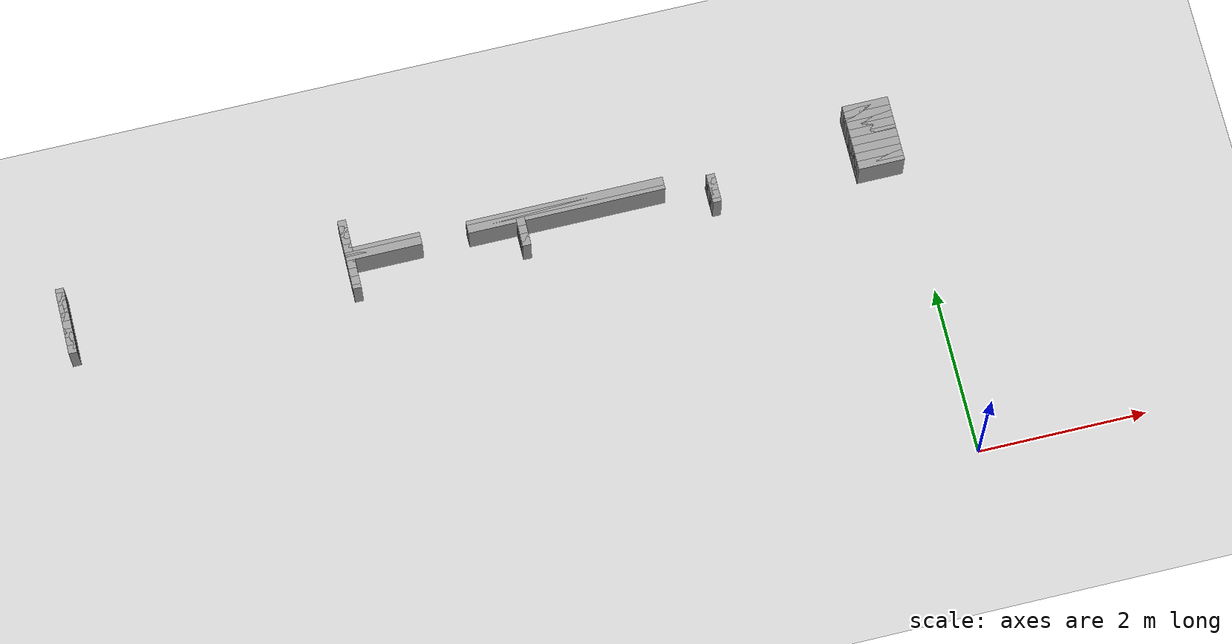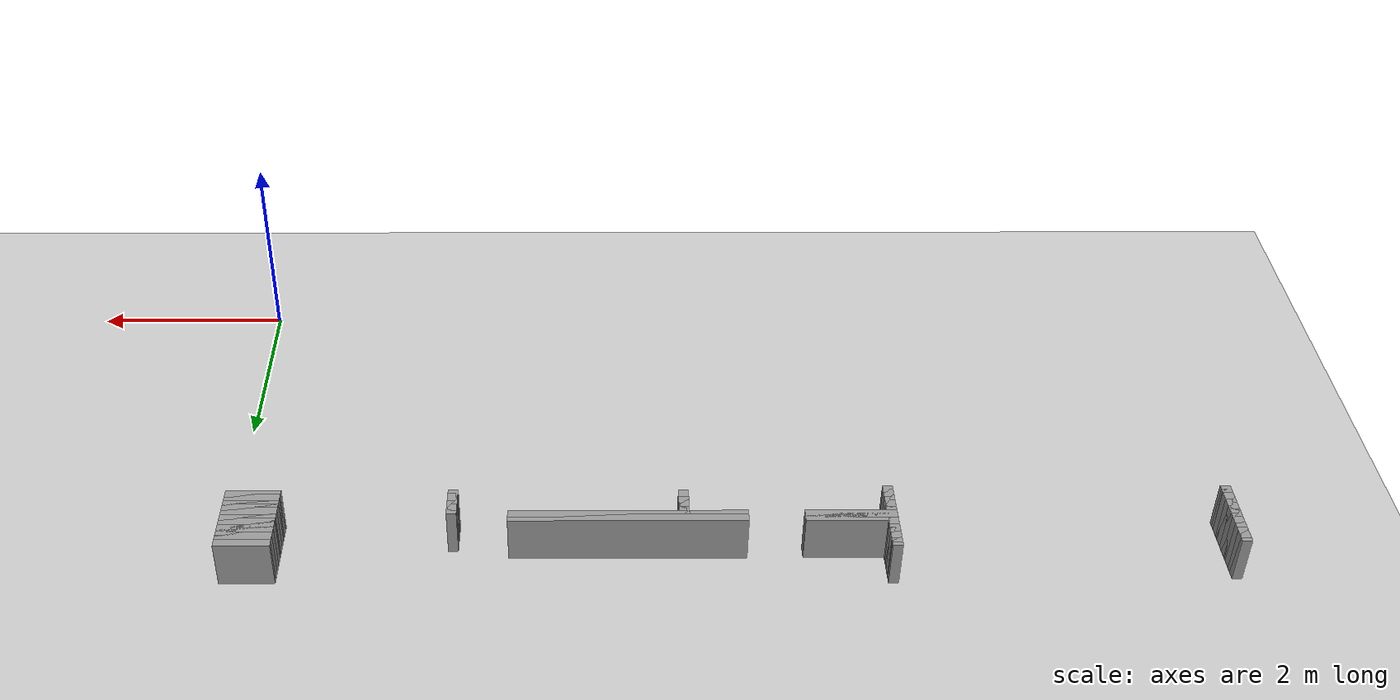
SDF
<sdf version="1.6">
 <world name="GridMap">
  <include><uri>model://sun</uri></include>
  <include><uri>model://ground_plane</uri></include>
  <model name="GridMap">
   <link name="Wall_(131.0,70.0)">
    <collision name="Wall_(131.0,70.0)_Collision">
     <geometry><box><size>0.1 0.1 0.5</size></box></geometry>
     <pose>-6.550000000000001 3.5 0.25 0 -0 0</pose>
    </collision>
    <inertial>
     <mass>0.5</mass>
     <pose>0 0.01 0 0 0 0</pose>
     <inertia><ixx>0.004</ixx><ixy>0.001</ixy><ixz>0</ixz><iyy>0.006</iyy><iyz>0</iyz><izz>0.007</izz></inertia>
    </inertial>
    <visual name="Wall_(131.0,70.0)_Visual">
     <geometry><box><size>0.1 0.1 0.5</size></box></geometry>
     <pose>-6.550000000000001 3.5 0.25 0 -0 0</pose>
     <material>
      <script><uri>file://media/materials/scripts/gazebo.material</uri><name>Gazebo/Grey</name></script>
      <ambient>1 1 1 1</ambient>
     </material>
     <meta><layer>0</layer></meta>
    </visual>
   </link>
   <link name="Wall_(198.0,70.0)">
    <collision name="Wall_(198.0,70.0)_Collision">
     <geometry><box><size>0.1 0.1 0.5</size></box></geometry>
     <pose>-9.9 3.5 0.25 0 -0 0</pose>
    </collision>
    <inertial>
     <mass>0.5</mass>
     <pose>0 0.01 0 0 0 0</pose>
     <inertia><ixx>0.004</ixx><ixy>0.001</ixy><ixz>0</ixz><iyy>0.006</iyy><iyz>0</iyz><izz>0.007</izz></inertia>
    </inertial>
    <visual name="Wall_(198.0,70.0)_Visual">
     <geometry><box><size>0.1 0.1 0.5</size></box></geometry>
     <pose>-9.9 3.5 0.25 0 -0 0</pose>
     <material>
      <script><uri>file://media/materials/scripts/gazebo.material</uri><name>Gazebo/Grey</name></script>
      <ambient>1 1 1 1</ambient>
     </material>
     <meta><layer>0</layer></meta>
    </visual>
   </link>
   <link name="Wall_(5.5,71.0)">
    <collision name="Wall_(5.5,71.0)_Collision">
     <geometry><box><size>0.55 0.1 0.5</size></box></geometry>
     <pose>-0.275 3.5500000000000003 0.25 0 -0 0</pose>
    </collision>
    <inertial>
     <mass>0.5</mass>
     <pose>0 0.01 0 0 0 0</pose>
     <inertia><ixx>0.004</ixx><ixy>0.001</ixy><ixz>0</ixz><iyy>0.006</iyy><iyz>0</iyz><izz>0.007</izz></inertia>
    </inertial>
    <visual name="Wall_(5.5,71.0)_Visual">
     <geometry><box><size>0.55 0.1 0.5</size></box></geometry>
     <pose>-0.275 3.5500000000000003 0.25 0 -0 0</pose>
     <material>
      <script><uri>file://media/materials/scripts/gazebo.material</uri><name>Gazebo/Grey</name></script>
      <ambient>1 1 1 1</ambient>
     </material>
     <meta><layer>0</layer></meta>
    </visual>
   </link>
   <link name="Wall_(45.0,71.0)">
    <collision name="Wall_(45.0,71.0)_Collision">
     <geometry><box><size>0.1 0.1 0.5</size></box></geometry>
     <pose>-2.25 3.5500000000000003 0.25 0 -0 0</pose>
    </collision>
    <inertial>
     <mass>0.5</mass>
     <pose>0 0.01 0 0 0 0</pose>
     <inertia><ixx>0.004</ixx><ixy>0.001</ixy><ixz>0</ixz><iyy>0.006</iyy><iyz>0</iyz><izz>0.007</izz></inertia>
    </inertial>
    <visual name="Wall_(45.0,71.0)_Visual">
     <geometry><box><size>0.1 0.1 0.5</size></box></geometry>
     <pose>-2.25 3.5500000000000003 0.25 0 -0 0</pose>
     <material>
      <script><uri>file://media/materials/scripts/gazebo.material</uri><name>Gazebo/Grey</name></script>
      <ambient>1 1 1 1</ambient>
     </material>
     <meta><layer>0</layer></meta>
    </visual>
   </link>
   <link name="Wall_(90.5,71.0)">
    <collision name="Wall_(90.5,71.0)_Collision">
     <geometry><box><size>0.1 0.1 0.5</size></box></geometry>
     <pose>-4.525 3.5500000000000003 0.25 0 -0 0</pose>
    </collision>
    <inertial>
     <mass>0.5</mass>
     <pose>0 0.01 0 0 0 0</pose>
     <inertia><ixx>0.004</ixx><ixy>0.001</ixy><ixz>0</ixz><iyy>0.006</iyy><iyz>0</iyz><izz>0.007</izz></inertia>
    </inertial>
    <visual name="Wall_(90.5,71.0)_Visual">
     <geometry><box><size>0.1 0.1 0.5</size></box></geometry>
     <pose>-4.525 3.5500000000000003 0.25 0 -0 0</pose>
     <material>
      <script><uri>file://media/materials/scripts/gazebo.material</uri><name>Gazebo/Grey</name></script>
      <ambient>1 1 1 1</ambient>
     </material>
     <meta><layer>0</layer></meta>
    </visual>
   </link>
   <link name="Wall_(131.0,71.0)">
    <collision name="Wall_(131.0,71.0)_Collision">
     <geometry><box><size>0.1 0.1 0.5</size></box></geometry>
     <pose>-6.550000000000001 3.5500000000000003 0.25 0 -0 0</pose>
    </collision>
    <inertial>
     <mass>0.5</mass>
     <pose>0 0.01 0 0 0 0</pose>
     <inertia><ixx>0.004</ixx><ixy>0.001</ixy><ixz>0</ixz><iyy>0.006</iyy><iyz>0</iyz><izz>0.007</izz></inertia>
    </inertial>
    <visual name="Wall_(131.0,71.0)_Visual">
     <geometry><box><size>0.1 0.1 0.5</size></box></geometry>
     <pose>-6.550000000000001 3.5500000000000003 0.25 0 -0 0</pose>
     <material>
      <script><uri>file://media/materials/scripts/gazebo.material</uri><name>Gazebo/Grey</name></script>
      <ambient>1 1 1 1</ambient>
     </material>
     <meta><layer>0</layer></meta>
    </visual>
   </link>
   <link name="Wall_(198.0,71.0)">
    <collision name="Wall_(198.0,71.0)_Collision">
     <geometry><box><size>0.1 0.1 0.5</size></box></geometry>
     <pose>-9.9 3.5500000000000003 0.25 0 -0 0</pose>
    </collision>
    <inertial>
     <mass>0.5</mass>
     <pose>0 0.01 0 0 0 0</pose>
     <inertia><ixx>0.004</ixx><ixy>0.001</ixy><ixz>0</ixz><iyy>0.006</iyy><iyz>0</iyz><izz>0.007</izz></inertia>
    </inertial>
    <visual name="Wall_(198.0,71.0)_Visual">
     <geometry><box><size>0.1 0.1 0.5</size></box></geometry>
     <pose>-9.9 3.5500000000000003 0.25 0 -0 0</pose>
     <material>
      <script><uri>file://media/materials/scripts/gazebo.material</uri><name>Gazebo/Grey</name></script>
      <ambient>1 1 1 1</ambient>
     </material>
     <meta><layer>0</layer></meta>
    </visual>
   </link>
   <link name="Wall_(5.5,72.0)">
    <collision name="Wall_(5.5,72.0)_Collision">
     <geometry><box><size>0.55 0.1 0.5</size></box></geometry>
     <pose>-0.275 3.6 0.25 0 -0 0</pose>
    </collision>
    <inertial>
     <mass>0.5</mass>
     <pose>0 0.01 0 0 0 0</pose>
     <inertia><ixx>0.004</ixx><ixy>0.001</ixy><ixz>0</ixz><iyy>0.006</iyy><iyz>0</iyz><izz>0.007</izz></inertia>
    </inertial>
    <visual name="Wall_(5.5,72.0)_Visual">
     <geometry><box><size>0.55 0.1 0.5</size></box></geometry>
     <pose>-0.275 3.6 0.25 0 -0 0</pose>
     <material>
      <script><uri>file://media/materials/scripts/gazebo.material</uri><name>Gazebo/Grey</name></script>
      <ambient>1 1 1 1</ambient>
     </material>
     <meta><layer>0</layer></meta>
    </visual>
   </link>
   <link name="Wall_(45.0,72.0)">
    <collision name="Wall_(45.0,72.0)_Collision">
     <geometry><box><size>0.1 0.1 0.5</size></box></geometry>
     <pose>-2.25 3.6 0.25 0 -0 0</pose>
    </collision>
    <inertial>
     <mass>0.5</mass>
     <pose>0 0.01 0 0 0 0</pose>
     <inertia><ixx>0.004</ixx><ixy>0.001</ixy><ixz>0</ixz><iyy>0.006</iyy><iyz>0</iyz><izz>0.007</izz></inertia>
    </inertial>
    <visual name="Wall_(45.0,72.0)_Visual">
     <geometry><box><size>0.1 0.1 0.5</size></box></geometry>
     <pose>-2.25 3.6 0.25 0 -0 0</pose>
     <material>
      <script><uri>file://media/materials/scripts/gazebo.material</uri><name>Gazebo/Grey</name></script>
      <ambient>1 1 1 1</ambient>
     </material>
     <meta><layer>0</layer></meta>
    </visual>
   </link>
   <link name="Wall_(90.5,72.0)">
    <collision name="Wall_(90.5,72.0)_Collision">
     <geometry><box><size>0.1 0.1 0.5</size></box></geometry>
     <pose>-4.525 3.6 0.25 0 -0 0</pose>
    </collision>
    <inertial>
     <mass>0.5</mass>
     <pose>0 0.01 0 0 0 0</pose>
     <inertia><ixx>0.004</ixx><ixy>0.001</ixy><ixz>0</ixz><iyy>0.006</iyy><iyz>0</iyz><izz>0.007</izz></inertia>
    </inertial>
    <visual name="Wall_(90.5,72.0)_Visual">
     <geometry><box><size>0.1 0.1 0.5</size></box></geometry>
     <pose>-4.525 3.6 0.25 0 -0 0</pose>
     <material>
      <script><uri>file://media/materials/scripts/gazebo.material</uri><name>Gazebo/Grey</name></script>
      <ambient>1 1 1 1</ambient>
     </material>
     <meta><layer>0</layer></meta>
    </visual>
   </link>
   <link name="Wall_(131.0,72.0)">
    <collision name="Wall_(131.0,72.0)_Collision">
     <geometry><box><size>0.1 0.1 0.5</size></box></geometry>
     <pose>-6.550000000000001 3.6 0.25 0 -0 0</pose>
    </collision>
    <inertial>
     <mass>0.5</mass>
     <pose>0 0.01 0 0 0 0</pose>
     <inertia><ixx>0.004</ixx><ixy>0.001</ixy><ixz>0</ixz><iyy>0.006</iyy><iyz>0</iyz><izz>0.007</izz></inertia>
    </inertial>
    <visual name="Wall_(131.0,72.0)_Visual">
     <geometry><box><size>0.1 0.1 0.5</size></box></geometry>
     <pose>-6.550000000000001 3.6 0.25 0 -0 0</pose>
     <material>
      <script><uri>file://media/materials/scripts/gazebo.material</uri><name>Gazebo/Grey</name></script>
      <ambient>1 1 1 1</ambient>
     </material>
     <meta><layer>0</layer></meta>
    </visual>
   </link>
   <link name="Wall_(198.0,72.0)">
    <collision name="Wall_(198.0,72.0)_Collision">
     <geometry><box><size>0.1 0.1 0.5</size></box></geometry>
     <pose>-9.9 3.6 0.25 0 -0 0</pose>
    </collision>
    <inertial>
     <mass>0.5</mass>
     <pose>0 0.01 0 0 0 0</pose>
     <inertia><ixx>0.004</ixx><ixy>0.001</ixy><ixz>0</ixz><iyy>0.006</iyy><iyz>0</iyz><izz>0.007</izz></inertia>
    </inertial>
    <visual name="Wall_(198.0,72.0)_Visual">
     <geometry><box><size>0.1 0.1 0.5</size></box></geometry>
     <pose>-9.9 3.6 0.25 0 -0 0</pose>
     <material>
      <script><uri>file://media/materials/scripts/gazebo.material</uri><name>Gazebo/Grey</name></script>
      <ambient>1 1 1 1</ambient>
     </material>
     <meta><layer>0</layer></meta>
    </visual>
   </link>
   <link name="Wall_(5.5,73.0)">
    <collision name="Wall_(5.5,73.0)_Collision">
     <geometry><box><size>0.55 0.1 0.5</size></box></geometry>
     <pose>-0.275 3.6500000000000004 0.25 0 -0 0</pose>
    </collision>
    <inertial>
     <mass>0.5</mass>
     <pose>0 0.01 0 0 0 0</pose>
     <inertia><ixx>0.004</ixx><ixy>0.001</ixy><ixz>0</ixz><iyy>0.006</iyy><iyz>0</iyz><izz>0.007</izz></inertia>
    </inertial>
    <visual name="Wall_(5.5,73.0)_Visual">
     <geometry><box><size>0.55 0.1 0.5</size></box></geometry>
     <pose>-0.275 3.6500000000000004 0.25 0 -0 0</pose>
     <material>
      <script><uri>file://media/materials/scripts/gazebo.material</uri><name>Gazebo/Grey</name></script>
      <ambient>1 1 1 1</ambient>
     </material>
     <meta><layer>0</layer></meta>
    </visual>
   </link>
   <link name="Wall_(45.0,73.0)">
    <collision name="Wall_(45.0,73.0)_Collision">
     <geometry><box><size>0.1 0.1 0.5</size></box></geometry>
     <pose>-2.25 3.6500000000000004 0.25 0 -0 0</pose>
    </collision>
    <inertial>
     <mass>0.5</mass>
     <pose>0 0.01 0 0 0 0</pose>
     <inertia><ixx>0.004</ixx><ixy>0.001</ixy><ixz>0</ixz><iyy>0.006</iyy><iyz>0</iyz><izz>0.007</izz></inertia>
    </inertial>
    <visual name="Wall_(45.0,73.0)_Visual">
     <geometry><box><size>0.1 0.1 0.5</size></box></geometry>
     <pose>-2.25 3.6500000000000004 0.25 0 -0 0</pose>
     <material>
      <script><uri>file://media/materials/scripts/gazebo.material</uri><name>Gazebo/Grey</name></script>
      <ambient>1 1 1 1</ambient>
     </material>
     <meta><layer>0</layer></meta>
    </visual>
   </link>
   <link name="Wall_(90.5,73.0)">
    <collision name="Wall_(90.5,73.0)_Collision">
     <geometry><box><size>0.1 0.1 0.5</size></box></geometry>
     <pose>-4.525 3.6500000000000004 0.25 0 -0 0</pose>
    </collision>
    <inertial>
     <mass>0.5</mass>
     <pose>0 0.01 0 0 0 0</pose>
     <inertia><ixx>0.004</ixx><ixy>0.001</ixy><ixz>0</ixz><iyy>0.006</iyy><iyz>0</iyz><izz>0.007</izz></inertia>
    </inertial>
    <visual name="Wall_(90.5,73.0)_Visual">
     <geometry><box><size>0.1 0.1 0.5</size></box></geometry>
     <pose>-4.525 3.6500000000000004 0.25 0 -0 0</pose>
     <material>
      <script><uri>file://media/materials/scripts/gazebo.material</uri><name>Gazebo/Grey</name></script>
      <ambient>1 1 1 1</ambient>
     </material>
     <meta><layer>0</layer></meta>
    </visual>
   </link>
   <link name="Wall_(131.0,73.0)">
    <collision name="Wall_(131.0,73.0)_Collision">
     <geometry><box><size>0.1 0.1 0.5</size></box></geometry>
     <pose>-6.550000000000001 3.6500000000000004 0.25 0 -0 0</pose>
    </collision>
    <inertial>
     <mass>0.5</mass>
     <pose>0 0.01 0 0 0 0</pose>
     <inertia><ixx>0.004</ixx><ixy>0.001</ixy><ixz>0</ixz><iyy>0.006</iyy><iyz>0</iyz><izz>0.007</izz></inertia>
    </inertial>
    <visual name="Wall_(131.0,73.0)_Visual">
     <geometry><box><size>0.1 0.1 0.5</size></box></geometry>
     <pose>-6.550000000000001 3.6500000000000004 0.25 0 -0 0</pose>
     <material>
      <script><uri>file://media/materials/scripts/gazebo.material</uri><name>Gazebo/Grey</name></script>
      <ambient>1 1 1 1</ambient>
     </material>
     <meta><layer>0</layer></meta>
    </visual>
   </link>
   <link name="Wall_(198.0,73.0)">
    <collision name="Wall_(198.0,73.0)_Collision">
     <geometry><box><size>0.1 0.1 0.5</size></box></geometry>
     <pose>-9.9 3.6500000000000004 0.25 0 -0 0</pose>
    </collision>
    <inertial>
     <mass>0.5</mass>
     <pose>0 0.01 0 0 0 0</pose>
     <inertia><ixx>0.004</ixx><ixy>0.001</ixy><ixz>0</ixz><iyy>0.006</iyy><iyz>0</iyz><izz>0.007</izz></inertia>
    </inertial>
    <visual name="Wall_(198.0,73.0)_Visual">
     <geometry><box><size>0.1 0.1 0.5</size></box></geometry>
     <pose>-9.9 3.6500000000000004 0.25 0 -0 0</pose>
     <material>
      <script><uri>file://media/materials/scripts/gazebo.material</uri><name>Gazebo/Grey</name></script>
      <ambient>1 1 1 1</ambient>
     </material>
     <meta><layer>0</layer></meta>
    </visual>
   </link>
   <link name="Wall_(5.5,74.0)">
    <collision name="Wall_(5.5,74.0)_Collision">
     <geometry><box><size>0.55 0.1 0.5</size></box></geometry>
     <pose>-0.275 3.7 0.25 0 -0 0</pose>
    </collision>
    <inertial>
     <mass>0.5</mass>
     <pose>0 0.01 0 0 0 0</pose>
     <inertia><ixx>0.004</ixx><ixy>0.001</ixy><ixz>0</ixz><iyy>0.006</iyy><iyz>0</iyz><izz>0.007</izz></inertia>
    </inertial>
    <visual name="Wall_(5.5,74.0)_Visual">
     <geometry><box><size>0.55 0.1 0.5</size></box></geometry>
     <pose>-0.275 3.7 0.25 0 -0 0</pose>
     <material>
      <script><uri>file://media/materials/scripts/gazebo.material</uri><name>Gazebo/Grey</name></script>
      <ambient>1 1 1 1</ambient>
     </material>
     <meta><layer>0</layer></meta>
    </visual>
   </link>
   <link name="Wall_(45.0,74.0)">
    <collision name="Wall_(45.0,74.0)_Collision">
     <geometry><box><size>0.1 0.1 0.5</size></box></geometry>
     <pose>-2.25 3.7 0.25 0 -0 0</pose>
    </collision>
    <inertial>
     <mass>0.5</mass>
     <pose>0 0.01 0 0 0 0</pose>
     <inertia><ixx>0.004</ixx><ixy>0.001</ixy><ixz>0</ixz><iyy>0.006</iyy><iyz>0</iyz><izz>0.007</izz></inertia>
    </inertial>
    <visual name="Wall_(45.0,74.0)_Visual">
     <geometry><box><size>0.1 0.1 0.5</size></box></geometry>
     <pose>-2.25 3.7 0.25 0 -0 0</pose>
     <material>
      <script><uri>file://media/materials/scripts/gazebo.material</uri><name>Gazebo/Grey</name></script>
      <ambient>1 1 1 1</ambient>
     </material>
     <meta><layer>0</layer></meta>
    </visual>
   </link>
   <link name="Wall_(90.5,74.0)">
    <collision name="Wall_(90.5,74.0)_Collision">
     <geometry><box><size>0.1 0.1 0.5</size></box></geometry>
     <pose>-4.525 3.7 0.25 0 -0 0</pose>
    </collision>
    <inertial>
     <mass>0.5</mass>
     <pose>0 0.01 0 0 0 0</pose>
     <inertia><ixx>0.004</ixx><ixy>0.001</ixy><ixz>0</ixz><iyy>0.006</iyy><iyz>0</iyz><izz>0.007</izz></inertia>
    </inertial>
    <visual name="Wall_(90.5,74.0)_Visual">
     <geometry><box><size>0.1 0.1 0.5</size></box></geometry>
     <pose>-4.525 3.7 0.25 0 -0 0</pose>
     <material>
      <script><uri>file://media/materials/scripts/gazebo.material</uri><name>Gazebo/Grey</name></script>
      <ambient>1 1 1 1</ambient>
     </material>
     <meta><layer>0</layer></meta>
    </visual>
   </link>
   <link name="Wall_(131.0,74.0)">
    <collision name="Wall_(131.0,74.0)_Collision">
     <geometry><box><size>0.1 0.1 0.5</size></box></geometry>
     <pose>-6.550000000000001 3.7 0.25 0 -0 0</pose>
    </collision>
    <inertial>
     <mass>0.5</mass>
     <pose>0 0.01 0 0 0 0</pose>
     <inertia><ixx>0.004</ixx><ixy>0.001</ixy><ixz>0</ixz><iyy>0.006</iyy><iyz>0</iyz><izz>0.007</izz></inertia>
    </inertial>
    <visual name="Wall_(131.0,74.0)_Visual">
     <geometry><box><size>0.1 0.1 0.5</size></box></geometry>
     <pose>-6.550000000000001 3.7 0.25 0 -0 0</pose>
     <material>
      <script><uri>file://media/materials/scripts/gazebo.material</uri><name>Gazebo/Grey</name></script>
      <ambient>1 1 1 1</ambient>
     </material>
     <meta><layer>0</layer></meta>
    </visual>
   </link>
   <link name="Wall_(198.0,74.0)">
    <collision name="Wall_(198.0,74.0)_Collision">
     <geometry><box><size>0.1 0.1 0.5</size></box></geometry>
     <pose>-9.9 3.7 0.25 0 -0 0</pose>
    </collision>
    <inertial>
     <mass>0.5</mass>
     <pose>0 0.01 0 0 0 0</pose>
     <inertia><ixx>0.004</ixx><ixy>0.001</ixy><ixz>0</ixz><iyy>0.006</iyy><iyz>0</iyz><izz>0.007</izz></inertia>
    </inertial>
    <visual name="Wall_(198.0,74.0)_Visual">
     <geometry><box><size>0.1 0.1 0.5</size></box></geometry>
     <pose>-9.9 3.7 0.25 0 -0 0</pose>
     <material>
      <script><uri>file://media/materials/scripts/gazebo.material</uri><name>Gazebo/Grey</name></script>
      <ambient>1 1 1 1</ambient>
     </material>
     <meta><layer>0</layer></meta>
    </visual>
   </link>
   <link name="Wall_(5.5,75.0)">
    <collision name="Wall_(5.5,75.0)_Collision">
     <geometry><box><size>0.55 0.1 0.5</size></box></geometry>
     <pose>-0.275 3.75 0.25 0 -0 0</pose>
    </collision>
    <inertial>
     <mass>0.5</mass>
     <pose>0 0.01 0 0 0 0</pose>
     <inertia><ixx>0.004</ixx><ixy>0.001</ixy><ixz>0</ixz><iyy>0.006</iyy><iyz>0</iyz><izz>0.007</izz></inertia>
    </inertial>
    <visual name="Wall_(5.5,75.0)_Visual">
     <geometry><box><size>0.55 0.1 0.5</size></box></geometry>
     <pose>-0.275 3.75 0.25 0 -0 0</pose>
     <material>
      <script><uri>file://media/materials/scripts/gazebo.material</uri><name>Gazebo/Grey</name></script>
      <ambient>1 1 1 1</ambient>
     </material>
     <meta><layer>0</layer></meta>
    </visual>
   </link>
   <link name="Wall_(45.0,75.0)">
    <collision name="Wall_(45.0,75.0)_Collision">
     <geometry><box><size>0.1 0.1 0.5</size></box></geometry>
     <pose>-2.25 3.75 0.25 0 -0 0</pose>
    </collision>
    <inertial>
     <mass>0.5</mass>
     <pose>0 0.01 0 0 0 0</pose>
     <inertia><ixx>0.004</ixx><ixy>0.001</ixy><ixz>0</ixz><iyy>0.006</iyy><iyz>0</iyz><izz>0.007</izz></inertia>
    </inertial>
    <visual name="Wall_(45.0,75.0)_Visual">
     <geometry><box><size>0.1 0.1 0.5</size></box></geometry>
     <pose>-2.25 3.75 0.25 0 -0 0</pose>
     <material>
      <script><uri>file://media/materials/scripts/gazebo.material</uri><name>Gazebo/Grey</name></script>
      <ambient>1 1 1 1</ambient>
     </material>
     <meta><layer>0</layer></meta>
    </visual>
   </link>
   <link name="Wall_(90.5,75.0)">
    <collision name="Wall_(90.5,75.0)_Collision">
     <geometry><box><size>0.1 0.1 0.5</size></box></geometry>
     <pose>-4.525 3.75 0.25 0 -0 0</pose>
    </collision>
    <inertial>
     <mass>0.5</mass>
     <pose>0 0.01 0 0 0 0</pose>
     <inertia><ixx>0.004</ixx><ixy>0.001</ixy><ixz>0</ixz><iyy>0.006</iyy><iyz>0</iyz><izz>0.007</izz></inertia>
    </inertial>
    <visual name="Wall_(90.5,75.0)_Visual">
     <geometry><box><size>0.1 0.1 0.5</size></box></geometry>
     <pose>-4.525 3.75 0.25 0 -0 0</pose>
     <material>
      <script><uri>file://media/materials/scripts/gazebo.material</uri><name>Gazebo/Grey</name></script>
      <ambient>1 1 1 1</ambient>
     </material>
     <meta><layer>0</layer></meta>
    </visual>
   </link>
   <link name="Wall_(131.0,75.0)">
    <collision name="Wall_(131.0,75.0)_Collision">
     <geometry><box><size>0.1 0.1 0.5</size></box></geometry>
     <pose>-6.550000000000001 3.75 0.25 0 -0 0</pose>
    </collision>
    <inertial>
     <mass>0.5</mass>
     <pose>0 0.01 0 0 0 0</pose>
     <inertia><ixx>0.004</ixx><ixy>0.001</ixy><ixz>0</ixz><iyy>0.006</iyy><iyz>0</iyz><izz>0.007</izz></inertia>
    </inertial>
    <visual name="Wall_(131.0,75.0)_Visual">
     <geometry><box><size>0.1 0.1 0.5</size></box></geometry>
     <pose>-6.550000000000001 3.75 0.25 0 -0 0</pose>
     <material>
      <script><uri>file://media/materials/scripts/gazebo.material</uri><name>Gazebo/Grey</name></script>
      <ambient>1 1 1 1</ambient>
     </material>
     <meta><layer>0</layer></meta>
    </visual>
   </link>
   <link name="Wall_(198.0,75.0)">
    <collision name="Wall_(198.0,75.0)_Collision">
     <geometry><box><size>0.1 0.1 0.5</size></box></geometry>
     <pose>-9.9 3.75 0.25 0 -0 0</pose>
    </collision>
    <inertial>
     <mass>0.5</mass>
     <pose>0 0.01 0 0 0 0</pose>
     <inertia><ixx>0.004</ixx><ixy>0.001</ixy><ixz>0</ixz><iyy>0.006</iyy><iyz>0</iyz><izz>0.007</izz></inertia>
    </inertial>
    <visual name="Wall_(198.0,75.0)_Visual">
     <geometry><box><size>0.1 0.1 0.5</size></box></geometry>
     <pose>-9.9 3.75 0.25 0 -0 0</pose>
     <material>
      <script><uri>file://media/materials/scripts/gazebo.material</uri><name>Gazebo/Grey</name></script>
      <ambient>1 1 1 1</ambient>
     </material>
     <meta><layer>0</layer></meta>
    </visual>
   </link>
   <link name="Wall_(5.5,76.0)">
    <collision name="Wall_(5.5,76.0)_Collision">
     <geometry><box><size>0.55 0.1 0.5</size></box></geometry>
     <pose>-0.275 3.8000000000000003 0.25 0 -0 0</pose>
    </collision>
    <inertial>
     <mass>0.5</mass>
     <pose>0 0.01 0 0 0 0</pose>
     <inertia><ixx>0.004</ixx><ixy>0.001</ixy><ixz>0</ixz><iyy>0.006</iyy><iyz>0</iyz><izz>0.007</izz></inertia>
    </inertial>
    <visual name="Wall_(5.5,76.0)_Visual">
     <geometry><box><size>0.55 0.1 0.5</size></box></geometry>
     <pose>-0.275 3.8000000000000003 0.25 0 -0 0</pose>
     <material>
      <script><uri>file://media/materials/scripts/gazebo.material</uri><name>Gazebo/Grey</name></script>
      <ambient>1 1 1 1</ambient>
     </material>
     <meta><layer>0</layer></meta>
    </visual>
   </link>
   <link name="Wall_(45.0,76.0)">
    <collision name="Wall_(45.0,76.0)_Collision">
     <geometry><box><size>0.1 0.1 0.5</size></box></geometry>
     <pose>-2.25 3.8000000000000003 0.25 0 -0 0</pose>
    </collision>
    <inertial>
     <mass>0.5</mass>
     <pose>0 0.01 0 0 0 0</pose>
     <inertia><ixx>0.004</ixx><ixy>0.001</ixy><ixz>0</ixz><iyy>0.006</iyy><iyz>0</iyz><izz>0.007</izz></inertia>
    </inertial>
    <visual name="Wall_(45.0,76.0)_Visual">
     <geometry><box><size>0.1 0.1 0.5</size></box></geometry>
     <pose>-2.25 3.8000000000000003 0.25 0 -0 0</pose>
     <material>
      <script><uri>file://media/materials/scripts/gazebo.material</uri><name>Gazebo/Grey</name></script>
      <ambient>1 1 1 1</ambient>
     </material>
     <meta><layer>0</layer></meta>
    </visual>
   </link>
   <link name="Wall_(90.5,76.0)">
    <collision name="Wall_(90.5,76.0)_Collision">
     <geometry><box><size>0.1 0.1 0.5</size></box></geometry>
     <pose>-4.525 3.8000000000000003 0.25 0 -0 0</pose>
    </collision>
    <inertial>
     <mass>0.5</mass>
     <pose>0 0.01 0 0 0 0</pose>
     <inertia><ixx>0.004</ixx><ixy>0.001</ixy><ixz>0</ixz><iyy>0.006</iyy><iyz>0</iyz><izz>0.007</izz></inertia>
    </inertial>
    <visual name="Wall_(90.5,76.0)_Visual">
     <geometry><box><size>0.1 0.1 0.5</size></box></geometry>
     <pose>-4.525 3.8000000000000003 0.25 0 -0 0</pose>
     <material>
      <script><uri>file://media/materials/scripts/gazebo.material</uri><name>Gazebo/Grey</name></script>
      <ambient>1 1 1 1</ambient>
     </material>
     <meta><layer>0</layer></meta>
    </visual>
   </link>
   <link name="Wall_(131.0,76.0)">
    <collision name="Wall_(131.0,76.0)_Collision">
     <geometry><box><size>0.1 0.1 0.5</size></box></geometry>
     <pose>-6.550000000000001 3.8000000000000003 0.25 0 -0 0</pose>
    </collision>
    <inertial>
     <mass>0.5</mass>
     <pose>0 0.01 0 0 0 0</pose>
     <inertia><ixx>0.004</ixx><ixy>0.001</ixy><ixz>0</ixz><iyy>0.006</iyy><iyz>0</iyz><izz>0.007</izz></inertia>
    </inertial>
    <visual name="Wall_(131.0,76.0)_Visual">
     <geometry><box><size>0.1 0.1 0.5</size></box></geometry>
     <pose>-6.550000000000001 3.8000000000000003 0.25 0 -0 0</pose>
     <material>
      <script><uri>file://media/materials/scripts/gazebo.material</uri><name>Gazebo/Grey</name></script>
      <ambient>1 1 1 1</ambient>
     </material>
     <meta><layer>0</layer></meta>
    </visual>
   </link>
   <link name="Wall_(198.0,76.0)">
    <collision name="Wall_(198.0,76.0)_Collision">
     <geometry><box><size>0.1 0.1 0.5</size></box></geometry>
     <pose>-9.9 3.8000000000000003 0.25 0 -0 0</pose>
    </collision>
    <inertial>
     <mass>0.5</mass>
     <pose>0 0.01 0 0 0 0</pose>
     <inertia><ixx>0.004</ixx><ixy>0.001</ixy><ixz>0</ixz><iyy>0.006</iyy><iyz>0</iyz><izz>0.007</izz></inertia>
    </inertial>
    <visual name="Wall_(198.0,76.0)_Visual">
     <geometry><box><size>0.1 0.1 0.5</size></box></geometry>
     <pose>-9.9 3.8000000000000003 0.25 0 -0 0</pose>
     <material>
      <script><uri>file://media/materials/scripts/gazebo.material</uri><name>Gazebo/Grey</name></script>
      <ambient>1 1 1 1</ambient>
     </material>
     <meta><layer>0</layer></meta>
    </visual>
   </link>
   <link name="Wall_(5.5,77.0)">
    <collision name="Wall_(5.5,77.0)_Collision">
     <geometry><box><size>0.55 0.1 0.5</size></box></geometry>
     <pose>-0.275 3.85 0.25 0 -0 0</pose>
    </collision>
    <inertial>
     <mass>0.5</mass>
     <pose>0 0.01 0 0 0 0</pose>
     <inertia><ixx>0.004</ixx><ixy>0.001</ixy><ixz>0</ixz><iyy>0.006</iyy><iyz>0</iyz><izz>0.007</izz></inertia>
    </inertial>
    <visual name="Wall_(5.5,77.0)_Visual">
     <geometry><box><size>0.55 0.1 0.5</size></box></geometry>
     <pose>-0.275 3.85 0.25 0 -0 0</pose>
     <material>
      <script><uri>file://media/materials/scripts/gazebo.material</uri><name>Gazebo/Grey</name></script>
      <ambient>1 1 1 1</ambient>
     </material>
     <meta><layer>0</layer></meta>
    </visual>
   </link>
   <link name="Wall_(79.5,77.0)">
    <collision name="Wall_(79.5,77.0)_Collision">
     <geometry><box><size>2.35 0.1 0.5</size></box></geometry>
     <pose>-3.975 3.85 0.25 0 -0 0</pose>
    </collision>
    <inertial>
     <mass>0.5</mass>
     <pose>0 0.01 0 0 0 0</pose>
     <inertia><ixx>0.004</ixx><ixy>0.001</ixy><ixz>0</ixz><iyy>0.006</iyy><iyz>0</iyz><izz>0.007</izz></inertia>
    </inertial>
    <visual name="Wall_(79.5,77.0)_Visual">
     <geometry><box><size>2.35 0.1 0.5</size></box></geometry>
     <pose>-3.975 3.85 0.25 0 -0 0</pose>
     <material>
      <script><uri>file://media/materials/scripts/gazebo.material</uri><name>Gazebo/Grey</name></script>
      <ambient>1 1 1 1</ambient>
     </material>
     <meta><layer>0</layer></meta>
    </visual>
   </link>
   <link name="Wall_(123.0,77.0)">
    <collision name="Wall_(123.0,77.0)_Collision">
     <geometry><box><size>0.9 0.1 0.5</size></box></geometry>
     <pose>-6.15 3.85 0.25 0 -0 0</pose>
    </collision>
    <inertial>
     <mass>0.5</mass>
     <pose>0 0.01 0 0 0 0</pose>
     <inertia><ixx>0.004</ixx><ixy>0.001</ixy><ixz>0</ixz><iyy>0.006</iyy><iyz>0</iyz><izz>0.007</izz></inertia>
    </inertial>
    <visual name="Wall_(123.0,77.0)_Visual">
     <geometry><box><size>0.9 0.1 0.5</size></box></geometry>
     <pose>-6.15 3.85 0.25 0 -0 0</pose>
     <material>
      <script><uri>file://media/materials/scripts/gazebo.material</uri><name>Gazebo/Grey</name></script>
      <ambient>1 1 1 1</ambient>
     </material>
     <meta><layer>0</layer></meta>
    </visual>
   </link>
   <link name="Wall_(198.0,77.0)">
    <collision name="Wall_(198.0,77.0)_Collision">
     <geometry><box><size>0.1 0.1 0.5</size></box></geometry>
     <pose>-9.9 3.85 0.25 0 -0 0</pose>
    </collision>
    <inertial>
     <mass>0.5</mass>
     <pose>0 0.01 0 0 0 0</pose>
     <inertia><ixx>0.004</ixx><ixy>0.001</ixy><ixz>0</ixz><iyy>0.006</iyy><iyz>0</iyz><izz>0.007</izz></inertia>
    </inertial>
    <visual name="Wall_(198.0,77.0)_Visual">
     <geometry><box><size>0.1 0.1 0.5</size></box></geometry>
     <pose>-9.9 3.85 0.25 0 -0 0</pose>
     <material>
      <script><uri>file://media/materials/scripts/gazebo.material</uri><name>Gazebo/Grey</name></script>
      <ambient>1 1 1 1</ambient>
     </material>
     <meta><layer>0</layer></meta>
    </visual>
   </link>
   <link name="Wall_(5.5,78.0)">
    <collision name="Wall_(5.5,78.0)_Collision">
     <geometry><box><size>0.55 0.1 0.5</size></box></geometry>
     <pose>-0.275 3.9000000000000004 0.25 0 -0 0</pose>
    </collision>
    <inertial>
     <mass>0.5</mass>
     <pose>0 0.01 0 0 0 0</pose>
     <inertia><ixx>0.004</ixx><ixy>0.001</ixy><ixz>0</ixz><iyy>0.006</iyy><iyz>0</iyz><izz>0.007</izz></inertia>
    </inertial>
    <visual name="Wall_(5.5,78.0)_Visual">
     <geometry><box><size>0.55 0.1 0.5</size></box></geometry>
     <pose>-0.275 3.9000000000000004 0.25 0 -0 0</pose>
     <material>
      <script><uri>file://media/materials/scripts/gazebo.material</uri><name>Gazebo/Grey</name></script>
      <ambient>1 1 1 1</ambient>
     </material>
     <meta><layer>0</layer></meta>
    </visual>
   </link>
   <link name="Wall_(79.5,78.0)">
    <collision name="Wall_(79.5,78.0)_Collision">
     <geometry><box><size>2.35 0.1 0.5</size></box></geometry>
     <pose>-3.975 3.9000000000000004 0.25 0 -0 0</pose>
    </collision>
    <inertial>
     <mass>0.5</mass>
     <pose>0 0.01 0 0 0 0</pose>
     <inertia><ixx>0.004</ixx><ixy>0.001</ixy><ixz>0</ixz><iyy>0.006</iyy><iyz>0</iyz><izz>0.007</izz></inertia>
    </inertial>
    <visual name="Wall_(79.5,78.0)_Visual">
     <geometry><box><size>2.35 0.1 0.5</size></box></geometry>
     <pose>-3.975 3.9000000000000004 0.25 0 -0 0</pose>
     <material>
      <script><uri>file://media/materials/scripts/gazebo.material</uri><name>Gazebo/Grey</name></script>
      <ambient>1 1 1 1</ambient>
     </material>
     <meta><layer>0</layer></meta>
    </visual>
   </link>
   <link name="Wall_(123.0,78.0)">
    <collision name="Wall_(123.0,78.0)_Collision">
     <geometry><box><size>0.9 0.1 0.5</size></box></geometry>
     <pose>-6.15 3.9000000000000004 0.25 0 -0 0</pose>
    </collision>
    <inertial>
     <mass>0.5</mass>
     <pose>0 0.01 0 0 0 0</pose>
     <inertia><ixx>0.004</ixx><ixy>0.001</ixy><ixz>0</ixz><iyy>0.006</iyy><iyz>0</iyz><izz>0.007</izz></inertia>
    </inertial>
    <visual name="Wall_(123.0,78.0)_Visual">
     <geometry><box><size>0.9 0.1 0.5</size></box></geometry>
     <pose>-6.15 3.9000000000000004 0.25 0 -0 0</pose>
     <material>
      <script><uri>file://media/materials/scripts/gazebo.material</uri><name>Gazebo/Grey</name></script>
      <ambient>1 1 1 1</ambient>
     </material>
     <meta><layer>0</layer></meta>
    </visual>
   </link>
   <link name="Wall_(198.0,78.0)">
    <collision name="Wall_(198.0,78.0)_Collision">
     <geometry><box><size>0.1 0.1 0.5</size></box></geometry>
     <pose>-9.9 3.9000000000000004 0.25 0 -0 0</pose>
    </collision>
    <inertial>
     <mass>0.5</mass>
     <pose>0 0.01 0 0 0 0</pose>
     <inertia><ixx>0.004</ixx><ixy>0.001</ixy><ixz>0</ixz><iyy>0.006</iyy><iyz>0</iyz><izz>0.007</izz></inertia>
    </inertial>
    <visual name="Wall_(198.0,78.0)_Visual">
     <geometry><box><size>0.1 0.1 0.5</size></box></geometry>
     <pose>-9.9 3.9000000000000004 0.25 0 -0 0</pose>
     <material>
      <script><uri>file://media/materials/scripts/gazebo.material</uri><name>Gazebo/Grey</name></script>
      <ambient>1 1 1 1</ambient>
     </material>
     <meta><layer>0</layer></meta>
    </visual>
   </link>
   <link name="Wall_(5.5,79.0)">
    <collision name="Wall_(5.5,79.0)_Collision">
     <geometry><box><size>0.55 0.1 0.5</size></box></geometry>
     <pose>-0.275 3.95 0.25 0 -0 0</pose>
    </collision>
    <inertial>
     <mass>0.5</mass>
     <pose>0 0.01 0 0 0 0</pose>
     <inertia><ixx>0.004</ixx><ixy>0.001</ixy><ixz>0</ixz><iyy>0.006</iyy><iyz>0</iyz><izz>0.007</izz></inertia>
    </inertial>
    <visual name="Wall_(5.5,79.0)_Visual">
     <geometry><box><size>0.55 0.1 0.5</size></box></geometry>
     <pose>-0.275 3.95 0.25 0 -0 0</pose>
     <material>
      <script><uri>file://media/materials/scripts/gazebo.material</uri><name>Gazebo/Grey</name></script>
      <ambient>1 1 1 1</ambient>
     </material>
     <meta><layer>0</layer></meta>
    </visual>
   </link>
   <link name="Wall_(131.0,79.0)">
    <collision name="Wall_(131.0,79.0)_Collision">
     <geometry><box><size>0.1 0.1 0.5</size></box></geometry>
     <pose>-6.550000000000001 3.95 0.25 0 -0 0</pose>
    </collision>
    <inertial>
     <mass>0.5</mass>
     <pose>0 0.01 0 0 0 0</pose>
     <inertia><ixx>0.004</ixx><ixy>0.001</ixy><ixz>0</ixz><iyy>0.006</iyy><iyz>0</iyz><izz>0.007</izz></inertia>
    </inertial>
    <visual name="Wall_(131.0,79.0)_Visual">
     <geometry><box><size>0.1 0.1 0.5</size></box></geometry>
     <pose>-6.550000000000001 3.95 0.25 0 -0 0</pose>
     <material>
      <script><uri>file://media/materials/scripts/gazebo.material</uri><name>Gazebo/Grey</name></script>
      <ambient>1 1 1 1</ambient>
     </material>
     <meta><layer>0</layer></meta>
    </visual>
   </link>
   <link name="Wall_(198.0,79.0)">
    <collision name="Wall_(198.0,79.0)_Collision">
     <geometry><box><size>0.1 0.1 0.5</size></box></geometry>
     <pose>-9.9 3.95 0.25 0 -0 0</pose>
    </collision>
    <inertial>
     <mass>0.5</mass>
     <pose>0 0.01 0 0 0 0</pose>
     <inertia><ixx>0.004</ixx><ixy>0.001</ixy><ixz>0</ixz><iyy>0.006</iyy><iyz>0</iyz><izz>0.007</izz></inertia>
    </inertial>
    <visual name="Wall_(198.0,79.0)_Visual">
     <geometry><box><size>0.1 0.1 0.5</size></box></geometry>
     <pose>-9.9 3.95 0.25 0 -0 0</pose>
     <material>
      <script><uri>file://media/materials/scripts/gazebo.material</uri><name>Gazebo/Grey</name></script>
      <ambient>1 1 1 1</ambient>
     </material>
     <meta><layer>0</layer></meta>
    </visual>
   </link>
   <link name="Wall_(5.5,80.0)">
    <collision name="Wall_(5.5,80.0)_Collision">
     <geometry><box><size>0.55 0.1 0.5</size></box></geometry>
     <pose>-0.275 4.0 0.25 0 -0 0</pose>
    </collision>
    <inertial>
     <mass>0.5</mass>
     <pose>0 0.01 0 0 0 0</pose>
     <inertia><ixx>0.004</ixx><ixy>0.001</ixy><ixz>0</ixz><iyy>0.006</iyy><iyz>0</iyz><izz>0.007</izz></inertia>
    </inertial>
    <visual name="Wall_(5.5,80.0)_Visual">
     <geometry><box><size>0.55 0.1 0.5</size></box></geometry>
     <pose>-0.275 4.0 0.25 0 -0 0</pose>
     <material>
      <script><uri>file://media/materials/scripts/gazebo.material</uri><name>Gazebo/Grey</name></script>
      <ambient>1 1 1 1</ambient>
     </material>
     <meta><layer>0</layer></meta>
    </visual>
   </link>
   <link name="Wall_(131.0,80.0)">
    <collision name="Wall_(131.0,80.0)_Collision">
     <geometry><box><size>0.1 0.1 0.5</size></box></geometry>
     <pose>-6.550000000000001 4.0 0.25 0 -0 0</pose>
    </collision>
    <inertial>
     <mass>0.5</mass>
     <pose>0 0.01 0 0 0 0</pose>
     <inertia><ixx>0.004</ixx><ixy>0.001</ixy><ixz>0</ixz><iyy>0.006</iyy><iyz>0</iyz><izz>0.007</izz></inertia>
    </inertial>
    <visual name="Wall_(131.0,80.0)_Visual">
     <geometry><box><size>0.1 0.1 0.5</size></box></geometry>
     <pose>-6.550000000000001 4.0 0.25 0 -0 0</pose>
     <material>
      <script><uri>file://media/materials/scripts/gazebo.material</uri><name>Gazebo/Grey</name></script>
      <ambient>1 1 1 1</ambient>
     </material>
     <meta><layer>0</layer></meta>
    </visual>
   </link>
   <link name="Wall_(198.0,80.0)">
    <collision name="Wall_(198.0,80.0)_Collision">
     <geometry><box><size>0.1 0.1 0.5</size></box></geometry>
     <pose>-9.9 4.0 0.25 0 -0 0</pose>
    </collision>
    <inertial>
     <mass>0.5</mass>
     <pose>0 0.01 0 0 0 0</pose>
     <inertia><ixx>0.004</ixx><ixy>0.001</ixy><ixz>0</ixz><iyy>0.006</iyy><iyz>0</iyz><izz>0.007</izz></inertia>
    </inertial>
    <visual name="Wall_(198.0,80.0)_Visual">
     <geometry><box><size>0.1 0.1 0.5</size></box></geometry>
     <pose>-9.9 4.0 0.25 0 -0 0</pose>
     <material>
      <script><uri>file://media/materials/scripts/gazebo.material</uri><name>Gazebo/Grey</name></script>
      <ambient>1 1 1 1</ambient>
     </material>
     <meta><layer>0</layer></meta>
    </visual>
   </link>
   <link name="Wall_(5.5,81.0)">
    <collision name="Wall_(5.5,81.0)_Collision">
     <geometry><box><size>0.55 0.1 0.5</size></box></geometry>
     <pose>-0.275 4.05 0.25 0 -0 0</pose>
    </collision>
    <inertial>
     <mass>0.5</mass>
     <pose>0 0.01 0 0 0 0</pose>
     <inertia><ixx>0.004</ixx><ixy>0.001</ixy><ixz>0</ixz><iyy>0.006</iyy><iyz>0</iyz><izz>0.007</izz></inertia>
    </inertial>
    <visual name="Wall_(5.5,81.0)_Visual">
     <geometry><box><size>0.55 0.1 0.5</size></box></geometry>
     <pose>-0.275 4.05 0.25 0 -0 0</pose>
     <material>
      <script><uri>file://media/materials/scripts/gazebo.material</uri><name>Gazebo/Grey</name></script>
      <ambient>1 1 1 1</ambient>
     </material>
     <meta><layer>0</layer></meta>
    </visual>
   </link>
   <link name="Wall_(131.0,81.0)">
    <collision name="Wall_(131.0,81.0)_Collision">
     <geometry><box><size>0.1 0.1 0.5</size></box></geometry>
     <pose>-6.550000000000001 4.05 0.25 0 -0 0</pose>
    </collision>
    <inertial>
     <mass>0.5</mass>
     <pose>0 0.01 0 0 0 0</pose>
     <inertia><ixx>0.004</ixx><ixy>0.001</ixy><ixz>0</ixz><iyy>0.006</iyy><iyz>0</iyz><izz>0.007</izz></inertia>
    </inertial>
    <visual name="Wall_(131.0,81.0)_Visual">
     <geometry><box><size>0.1 0.1 0.5</size></box></geometry>
     <pose>-6.550000000000001 4.05 0.25 0 -0 0</pose>
     <material>
      <script><uri>file://media/materials/scripts/gazebo.material</uri><name>Gazebo/Grey</name></script>
      <ambient>1 1 1 1</ambient>
     </material>
     <meta><layer>0</layer></meta>
    </visual>
   </link>
   <link name="Wall_(198.0,81.0)">
    <collision name="Wall_(198.0,81.0)_Collision">
     <geometry><box><size>0.1 0.1 0.5</size></box></geometry>
     <pose>-9.9 4.05 0.25 0 -0 0</pose>
    </collision>
    <inertial>
     <mass>0.5</mass>
     <pose>0 0.01 0 0 0 0</pose>
     <inertia><ixx>0.004</ixx><ixy>0.001</ixy><ixz>0</ixz><iyy>0.006</iyy><iyz>0</iyz><izz>0.007</izz></inertia>
    </inertial>
    <visual name="Wall_(198.0,81.0)_Visual">
     <geometry><box><size>0.1 0.1 0.5</size></box></geometry>
     <pose>-9.9 4.05 0.25 0 -0 0</pose>
     <material>
      <script><uri>file://media/materials/scripts/gazebo.material</uri><name>Gazebo/Grey</name></script>
      <ambient>1 1 1 1</ambient>
     </material>
     <meta><layer>0</layer></meta>
    </visual>
   </link>
   <link name="Wall_(5.5,82.0)">
    <collision name="Wall_(5.5,82.0)_Collision">
     <geometry><box><size>0.55 0.1 0.5</size></box></geometry>
     <pose>-0.275 4.1000000000000005 0.25 0 -0 0</pose>
    </collision>
    <inertial>
     <mass>0.5</mass>
     <pose>0 0.01 0 0 0 0</pose>
     <inertia><ixx>0.004</ixx><ixy>0.001</ixy><ixz>0</ixz><iyy>0.006</iyy><iyz>0</iyz><izz>0.007</izz></inertia>
    </inertial>
    <visual name="Wall_(5.5,82.0)_Visual">
     <geometry><box><size>0.55 0.1 0.5</size></box></geometry>
     <pose>-0.275 4.1000000000000005 0.25 0 -0 0</pose>
     <material>
      <script><uri>file://media/materials/scripts/gazebo.material</uri><name>Gazebo/Grey</name></script>
      <ambient>1 1 1 1</ambient>
     </material>
     <meta><layer>0</layer></meta>
    </visual>
   </link>
   <link name="Wall_(131.0,82.0)">
    <collision name="Wall_(131.0,82.0)_Collision">
     <geometry><box><size>0.1 0.1 0.5</size></box></geometry>
     <pose>-6.550000000000001 4.1000000000000005 0.25 0 -0 0</pose>
    </collision>
    <inertial>
     <mass>0.5</mass>
     <pose>0 0.01 0 0 0 0</pose>
     <inertia><ixx>0.004</ixx><ixy>0.001</ixy><ixz>0</ixz><iyy>0.006</iyy><iyz>0</iyz><izz>0.007</izz></inertia>
    </inertial>
    <visual name="Wall_(131.0,82.0)_Visual">
     <geometry><box><size>0.1 0.1 0.5</size></box></geometry>
     <pose>-6.550000000000001 4.1000000000000005 0.25 0 -0 0</pose>
     <material>
      <script><uri>file://media/materials/scripts/gazebo.material</uri><name>Gazebo/Grey</name></script>
      <ambient>1 1 1 1</ambient>
     </material>
     <meta><layer>0</layer></meta>
    </visual>
   </link>
   <link name="Wall_(198.0,82.0)">
    <collision name="Wall_(198.0,82.0)_Collision">
     <geometry><box><size>0.1 0.1 0.5</size></box></geometry>
     <pose>-9.9 4.1000000000000005 0.25 0 -0 0</pose>
    </collision>
    <inertial>
     <mass>0.5</mass>
     <pose>0 0.01 0 0 0 0</pose>
     <inertia><ixx>0.004</ixx><ixy>0.001</ixy><ixz>0</ixz><iyy>0.006</iyy><iyz>0</iyz><izz>0.007</izz></inertia>
    </inertial>
    <visual name="Wall_(198.0,82.0)_Visual">
     <geometry><box><size>0.1 0.1 0.5</size></box></geometry>
     <pose>-9.9 4.1000000000000005 0.25 0 -0 0</pose>
     <material>
      <script><uri>file://media/materials/scripts/gazebo.material</uri><name>Gazebo/Grey</name></script>
      <ambient>1 1 1 1</ambient>
     </material>
     <meta><layer>0</layer></meta>
    </visual>
   </link>
   <link name="Wall_(5.5,83.0)">
    <collision name="Wall_(5.5,83.0)_Collision">
     <geometry><box><size>0.55 0.1 0.5</size></box></geometry>
     <pose>-0.275 4.15 0.25 0 -0 0</pose>
    </collision>
    <inertial>
     <mass>0.5</mass>
     <pose>0 0.01 0 0 0 0</pose>
     <inertia><ixx>0.004</ixx><ixy>0.001</ixy><ixz>0</ixz><iyy>0.006</iyy><iyz>0</iyz><izz>0.007</izz></inertia>
    </inertial>
    <visual name="Wall_(5.5,83.0)_Visual">
     <geometry><box><size>0.55 0.1 0.5</size></box></geometry>
     <pose>-0.275 4.15 0.25 0 -0 0</pose>
     <material>
      <script><uri>file://media/materials/scripts/gazebo.material</uri><name>Gazebo/Grey</name></script>
      <ambient>1 1 1 1</ambient>
     </material>
     <meta><layer>0</layer></meta>
    </visual>
   </link>
   <link name="Wall_(131.0,83.0)">
    <collision name="Wall_(131.0,83.0)_Collision">
     <geometry><box><size>0.1 0.1 0.5</size></box></geometry>
     <pose>-6.550000000000001 4.15 0.25 0 -0 0</pose>
    </collision>
    <inertial>
     <mass>0.5</mass>
     <pose>0 0.01 0 0 0 0</pose>
     <inertia><ixx>0.004</ixx><ixy>0.001</ixy><ixz>0</ixz><iyy>0.006</iyy><iyz>0</iyz><izz>0.007</izz></inertia>
    </inertial>
    <visual name="Wall_(131.0,83.0)_Visual">
     <geometry><box><size>0.1 0.1 0.5</size></box></geometry>
     <pose>-6.550000000000001 4.15 0.25 0 -0 0</pose>
     <material>
      <script><uri>file://media/materials/scripts/gazebo.material</uri><name>Gazebo/Grey</name></script>
      <ambient>1 1 1 1</ambient>
     </material>
     <meta><layer>0</layer></meta>
    </visual>
   </link>
   <link name="Wall_(198.0,83.0)">
    <collision name="Wall_(198.0,83.0)_Collision">
     <geometry><box><size>0.1 0.1 0.5</size></box></geometry>
     <pose>-9.9 4.15 0.25 0 -0 0</pose>
    </collision>
    <inertial>
     <mass>0.5</mass>
     <pose>0 0.01 0 0 0 0</pose>
     <inertia><ixx>0.004</ixx><ixy>0.001</ixy><ixz>0</ixz><iyy>0.006</iyy><iyz>0</iyz><izz>0.007</izz></inertia>
    </inertial>
    <visual name="Wall_(198.0,83.0)_Visual">
     <geometry><box><size>0.1 0.1 0.5</size></box></geometry>
     <pose>-9.9 4.15 0.25 0 -0 0</pose>
     <material>
      <script><uri>file://media/materials/scripts/gazebo.material</uri><name>Gazebo/Grey</name></script>
      <ambient>1 1 1 1</ambient>
     </material>
     <meta><layer>0</layer></meta>
    </visual>
   </link>
   <link name="Wall_(5.5,84.0)">
    <collision name="Wall_(5.5,84.0)_Collision">
     <geometry><box><size>0.55 0.1 0.5</size></box></geometry>
     <pose>-0.275 4.2 0.25 0 -0 0</pose>
    </collision>
    <inertial>
     <mass>0.5</mass>
     <pose>0 0.01 0 0 0 0</pose>
     <inertia><ixx>0.004</ixx><ixy>0.001</ixy><ixz>0</ixz><iyy>0.006</iyy><iyz>0</iyz><izz>0.007</izz></inertia>
    </inertial>
    <visual name="Wall_(5.5,84.0)_Visual">
     <geometry><box><size>0.55 0.1 0.5</size></box></geometry>
     <pose>-0.275 4.2 0.25 0 -0 0</pose>
     <material>
      <script><uri>file://media/materials/scripts/gazebo.material</uri><name>Gazebo/Grey</name></script>
      <ambient>1 1 1 1</ambient>
     </material>
     <meta><layer>0</layer></meta>
    </visual>
   </link>
   <link name="Wall_(131.0,84.0)">
    <collision name="Wall_(131.0,84.0)_Collision">
     <geometry><box><size>0.1 0.1 0.5</size></box></geometry>
     <pose>-6.550000000000001 4.2 0.25 0 -0 0</pose>
    </collision>
    <inertial>
     <mass>0.5</mass>
     <pose>0 0.01 0 0 0 0</pose>
     <inertia><ixx>0.004</ixx><ixy>0.001</ixy><ixz>0</ixz><iyy>0.006</iyy><iyz>0</iyz><izz>0.007</izz></inertia>
    </inertial>
    <visual name="Wall_(131.0,84.0)_Visual">
     <geometry><box><size>0.1 0.1 0.5</size></box></geometry>
     <pose>-6.550000000000001 4.2 0.25 0 -0 0</pose>
     <material>
      <script><uri>file://media/materials/scripts/gazebo.material</uri><name>Gazebo/Grey</name></script>
      <ambient>1 1 1 1</ambient>
     </material>
     <meta><layer>0</layer></meta>
    </visual>
   </link>
   <link name="Wall_(198.0,84.0)">
    <collision name="Wall_(198.0,84.0)_Collision">
     <geometry><box><size>0.1 0.1 0.5</size></box></geometry>
     <pose>-9.9 4.2 0.25 0 -0 0</pose>
    </collision>
    <inertial>
     <mass>0.5</mass>
     <pose>0 0.01 0 0 0 0</pose>
     <inertia><ixx>0.004</ixx><ixy>0.001</ixy><ixz>0</ixz><iyy>0.006</iyy><iyz>0</iyz><izz>0.007</izz></inertia>
    </inertial>
    <visual name="Wall_(198.0,84.0)_Visual">
     <geometry><box><size>0.1 0.1 0.5</size></box></geometry>
     <pose>-9.9 4.2 0.25 0 -0 0</pose>
     <material>
      <script><uri>file://media/materials/scripts/gazebo.material</uri><name>Gazebo/Grey</name></script>
      <ambient>1 1 1 1</ambient>
     </material>
     <meta><layer>0</layer></meta>
    </visual>
   </link>
   <link name="Wall_(5.5,85.0)">
    <collision name="Wall_(5.5,85.0)_Collision">
     <geometry><box><size>0.55 0.1 0.5</size></box></geometry>
     <pose>-0.275 4.25 0.25 0 -0 0</pose>
    </collision>
    <inertial>
     <mass>0.5</mass>
     <pose>0 0.01 0 0 0 0</pose>
     <inertia><ixx>0.004</ixx><ixy>0.001</ixy><ixz>0</ixz><iyy>0.006</iyy><iyz>0</iyz><izz>0.007</izz></inertia>
    </inertial>
    <visual name="Wall_(5.5,85.0)_Visual">
     <geometry><box><size>0.55 0.1 0.5</size></box></geometry>
     <pose>-0.275 4.25 0.25 0 -0 0</pose>
     <material>
      <script><uri>file://media/materials/scripts/gazebo.material</uri><name>Gazebo/Grey</name></script>
      <ambient>1 1 1 1</ambient>
     </material>
     <meta><layer>0</layer></meta>
    </visual>
   </link>
   <link name="Wall_(131.0,85.0)">
    <collision name="Wall_(131.0,85.0)_Collision">
     <geometry><box><size>0.1 0.1 0.5</size></box></geometry>
     <pose>-6.550000000000001 4.25 0.25 0 -0 0</pose>
    </collision>
    <inertial>
     <mass>0.5</mass>
     <pose>0 0.01 0 0 0 0</pose>
     <inertia><ixx>0.004</ixx><ixy>0.001</ixy><ixz>0</ixz><iyy>0.006</iyy><iyz>0</iyz><izz>0.007</izz></inertia>
    </inertial>
    <visual name="Wall_(131.0,85.0)_Visual">
     <geometry><box><size>0.1 0.1 0.5</size></box></geometry>
     <pose>-6.550000000000001 4.25 0.25 0 -0 0</pose>
     <material>
      <script><uri>file://media/materials/scripts/gazebo.material</uri><name>Gazebo/Grey</name></script>
      <ambient>1 1 1 1</ambient>
     </material>
     <meta><layer>0</layer></meta>
    </visual>
   </link>
   <static>1</static>
  </model>
 </world>
</sdf>
